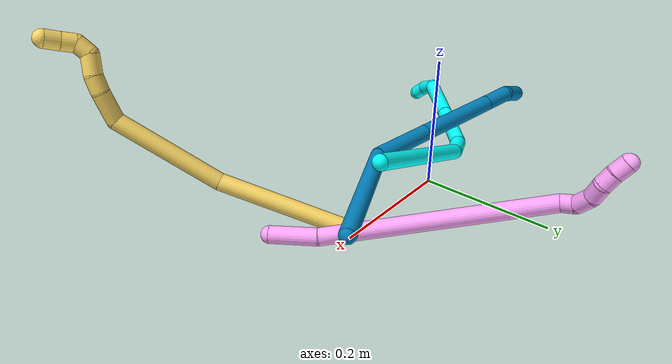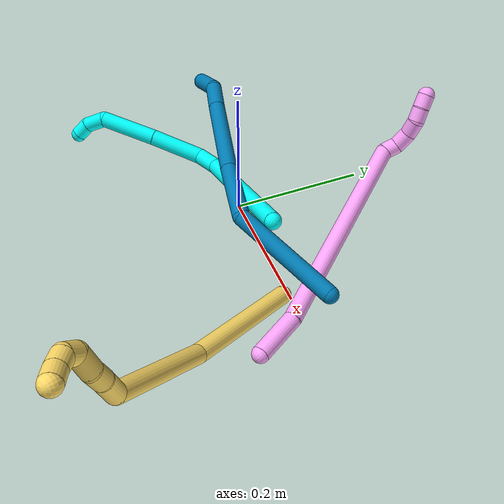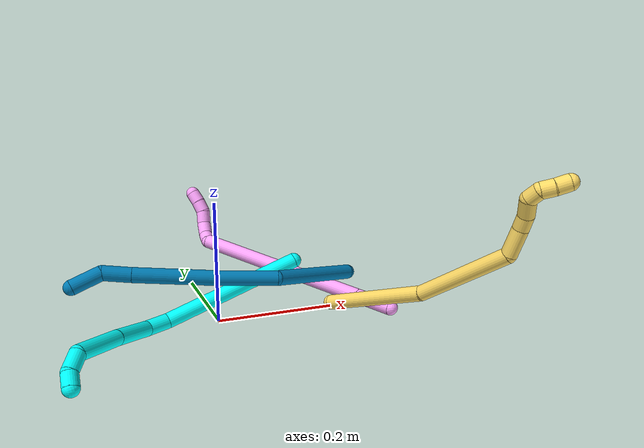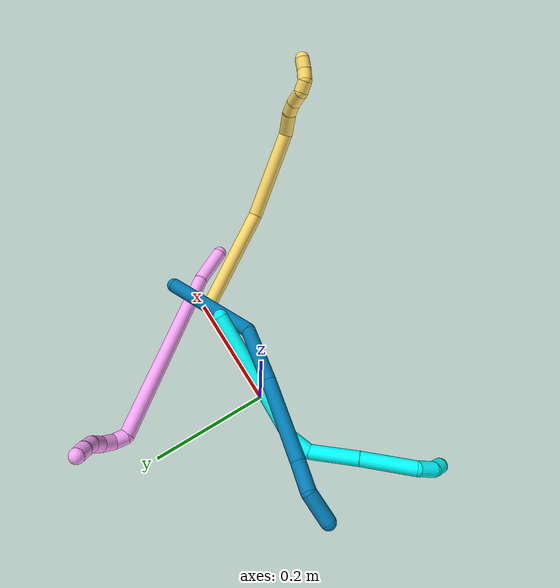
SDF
<sdf version="1.7">
 <world name="default">
  <model name="photoneo_s_sensor">
   <static>1</static>
   <pose>0 0 2 1.57079 1.57079 3.14159</pose>
   <link name="link">
    <inertial><mass>0.1</mass></inertial>
    <sensor name="sensor" type="depth">
     <update_rate>30</update_rate>
     <camera>
      <horizontal_fov>1.22</horizontal_fov>
      <image><width>1920</width><height>1200</height><format>B8G8R8</format></image>
      <clip><near>0.1</near><far>4</far></clip>
      <depth_camera><output>points</output></depth_camera>
     </camera>
     <plugin name="camera_plugin" filename="libgazebo_ros_depth_camera.so">
      <baseline>0.2</baseline>
      <alwaysOn>1</alwaysOn>
      <updateRate>0.0</updateRate>
      <cameraName>camera_ir</cameraName>
      <imageTopicName>/camera/color/image_raw</imageTopicName>
      <cameraInfoTopicName>/camera/color/camera_info</cameraInfoTopicName>
      <depthImageTopicName>/camera/depth/image_raw</depthImageTopicName>
      <depthImageCameraInfoTopicName>/camera/depth/camera_info</depthImageCameraInfoTopicName>
      <pointCloudTopicName>/camera/depth/points</pointCloudTopicName>
      <frameName>fr_optical</frameName>
      <pointCloudCutoff>0.1</pointCloudCutoff>
      <pointCloudCutoffMax>2.0</pointCloudCutoffMax>
      <distortionK1>0</distortionK1>
      <distortionK2>0</distortionK2>
      <distortionK3>0</distortionK3>
      <distortionT1>0</distortionT1>
      <distortionT2>0</distortionT2>
      <CxPrime>0</CxPrime>
      <Cx>0</Cx>
      <Cy>0</Cy>
      <focalLength>0</focalLength>
      <hackBaseline>0</hackBaseline>
     </plugin>
    </sensor>
   </link>
  </model>
  <model name="bin">
   <static>1</static>
   <link name="bottom">
    <collision name="collision-bottom">
     <pose>0 0 -0.01 0 -0 0</pose>
     <geometry><box><size>0.8 0.6 0.02</size></box></geometry>
     <surface>
      <friction><ode><mu>100</mu><mu2>100</mu2></ode></friction>
      <contact><collide_bitmask>65535</collide_bitmask></contact>
     </surface>
    </collision>
   </link>
   <link name="west_wall">
    <collision name="collision-west_wall">
     <pose>-0.41 0 0.1 0 -0 0</pose>
     <geometry><box><size>0.02 0.6 0.2</size></box></geometry>
     <surface>
      <friction><ode><mu>100</mu><mu2>100</mu2></ode></friction>
      <contact><collide_bitmask>65535</collide_bitmask></contact>
     </surface>
    </collision>
   </link>
   <link name="east_wall">
    <collision name="collision-east_wall">
     <pose>0.41 0 0.1 0 -0 0</pose>
     <geometry><box><size>0.02 0.6 0.2</size></box></geometry>
     <surface>
      <friction><ode><mu>100</mu><mu2>100</mu2></ode></friction>
      <contact><collide_bitmask>65535</collide_bitmask></contact>
     </surface>
    </collision>
   </link>
   <link name="south_wall">
    <collision name="collision-south_wall">
     <pose>0 -0.31 0.1 0 -0 0</pose>
     <geometry><box><size>0.8 0.02 0.2</size></box></geometry>
     <surface>
      <friction><ode><mu>100</mu><mu2>100</mu2></ode></friction>
      <contact><collide_bitmask>65535</collide_bitmask></contact>
     </surface>
    </collision>
   </link>
   <link name="north_wall">
    <collision name="collision-north_wall">
     <pose>0 0.31 0.1 0 -0 0</pose>
     <geometry><box><size>0.8 0.02 0.2</size></box></geometry>
     <surface>
      <friction><ode><mu>100</mu><mu2>100</mu2></ode></friction>
      <contact><collide_bitmask>65535</collide_bitmask></contact>
     </surface>
    </collision>
   </link>
  </model>
  <model name="3">
   <static>0</static>
   <link name="3">
    <collision name="collision-cylinder-e_1_1_4">
     <pose>-0.044591 0.014558 0.105591 -0.137004 -0.396214 0.027544</pose>
     <geometry><cylinder><radius>0.0125</radius><length>0.231082</length></cylinder></geometry>
     <surface>
      <friction><ode><mu>1.16</mu><mu2>1.16</mu2><slip1>0</slip1><slip2>0</slip2></ode></friction>
      <contact><ode><kp>1e+06</kp><kd>1</kd><max_vel>0</max_vel><min_depth>0.001</min_depth></ode></contact>
     </surface>
    </collision>
    <visual name="visual-cylinder-e_1_1_4">
     <pose>-0.044591 0.014558 0.105591 -0.137004 -0.396214 0.027544</pose>
     <geometry><cylinder><radius>0.0125</radius><length>0.231082</length></cylinder></geometry>
     <material><ambient>0.003922 1 0.996078 1</ambient></material>
    </visual>
    <collision name="collision-cylinder-e_2_4_5">
     <pose>-0.088612 0.029142 0.230666 -0.001383 0.029188 -2e-05</pose>
     <geometry><cylinder><radius>0.0125</radius><length>0.038985</length></cylinder></geometry>
     <surface>
      <friction><ode><mu>1.16</mu><mu2>1.16</mu2><slip1>0</slip1><slip2>0</slip2></ode></friction>
      <contact><ode><kp>1e+06</kp><kd>1</kd><max_vel>0</max_vel><min_depth>0.001</min_depth></ode></contact>
     </surface>
    </collision>
    <visual name="visual-cylinder-e_2_4_5">
     <pose>-0.088612 0.029142 0.230666 -0.001383 0.029188 -2e-05</pose>
     <geometry><cylinder><radius>0.0125</radius><length>0.038985</length></cylinder></geometry>
     <material><ambient>0.003922 1 0.996078 1</ambient></material>
    </visual>
    <collision name="collision-cylinder-e_3_5_6">
     <pose>-0.067881 0.019706 0.285033 0.264912 0.508844 0.069271</pose>
     <geometry><cylinder><radius>0.0125</radius><length>0.082772</length></cylinder></geometry>
     <surface>
      <friction><ode><mu>1.16</mu><mu2>1.16</mu2><slip1>0</slip1><slip2>0</slip2></ode></friction>
      <contact><ode><kp>1e+06</kp><kd>1</kd><max_vel>0</max_vel><min_depth>0.001</min_depth></ode></contact>
     </surface>
    </collision>
    <visual name="visual-cylinder-e_3_5_6">
     <pose>-0.067881 0.019706 0.285033 0.264912 0.508844 0.069271</pose>
     <geometry><cylinder><radius>0.0125</radius><length>0.082772</length></cylinder></geometry>
     <material><ambient>0.003922 1 0.996078 1</ambient></material>
    </visual>
    <collision name="collision-cylinder-e_4_6_7">
     <pose>-0.02818 -0.001098 0.359246 0.280726 0.445351 0.063964</pose>
     <geometry><cylinder><radius>0.0125</radius><length>0.090715</length></cylinder></geometry>
     <surface>
      <friction><ode><mu>1.16</mu><mu2>1.16</mu2><slip1>0</slip1><slip2>0</slip2></ode></friction>
      <contact><ode><kp>1e+06</kp><kd>1</kd><max_vel>0</max_vel><min_depth>0.001</min_depth></ode></contact>
     </surface>
    </collision>
    <visual name="visual-cylinder-e_4_6_7">
     <pose>-0.02818 -0.001098 0.359246 0.280726 0.445351 0.063964</pose>
     <geometry><cylinder><radius>0.0125</radius><length>0.090715</length></cylinder></geometry>
     <material><ambient>0.003922 1 0.996078 1</ambient></material>
    </visual>
    <collision name="collision-cylinder-e_5_7_8">
     <pose>-0.008545 -0.024029 0.410607 0.766798 0.005761 0.002324</pose>
     <geometry><cylinder><radius>0.0125</radius><length>0.033411</length></cylinder></geometry>
     <surface>
      <friction><ode><mu>1.16</mu><mu2>1.16</mu2><slip1>0</slip1><slip2>0</slip2></ode></friction>
      <contact><ode><kp>1e+06</kp><kd>1</kd><max_vel>0</max_vel><min_depth>0.001</min_depth></ode></contact>
     </surface>
    </collision>
    <visual name="visual-cylinder-e_5_7_8">
     <pose>-0.008545 -0.024029 0.410607 0.766798 0.005761 0.002324</pose>
     <geometry><cylinder><radius>0.0125</radius><length>0.033411</length></cylinder></geometry>
     <material><ambient>0.003922 1 0.996078 1</ambient></material>
    </visual>
    <collision name="collision-cylinder-e_6_8_2">
     <pose>-0.010393 -0.046218 0.426705 1.2043 -0.169561 -0.116686</pose>
     <geometry><cylinder><radius>0.0125</radius><length>0.023035</length></cylinder></geometry>
     <surface>
      <friction><ode><mu>1.16</mu><mu2>1.16</mu2><slip1>0</slip1><slip2>0</slip2></ode></friction>
      <contact><ode><kp>1e+06</kp><kd>1</kd><max_vel>0</max_vel><min_depth>0.001</min_depth></ode></contact>
     </surface>
    </collision>
    <visual name="visual-cylinder-e_6_8_2">
     <pose>-0.010393 -0.046218 0.426705 1.2043 -0.169561 -0.116686</pose>
     <geometry><cylinder><radius>0.0125</radius><length>0.023035</length></cylinder></geometry>
     <material><ambient>0.003922 1 0.996078 1</ambient></material>
    </visual>
    <collision name="collision-sphere-2">
     <pose>-0.012336 -0.056816 0.430773 0 -0 0</pose>
     <geometry><sphere><radius>0.0125</radius></sphere></geometry>
     <surface>
      <friction><ode><mu>1.16</mu><mu2>1.16</mu2><slip1>0</slip1><slip2>0</slip2></ode></friction>
      <contact><ode><kp>1e+06</kp><kd>1</kd><max_vel>0</max_vel><min_depth>0.001</min_depth></ode></contact>
     </surface>
    </collision>
    <visual name="visual-sphere-2">
     <pose>-0.012336 -0.056816 0.430773 0 -0 0</pose>
     <geometry><sphere><radius>0.0125</radius></sphere></geometry>
     <material><ambient>0.003922 1 0.996078 1</ambient></material>
    </visual>
    <collision name="collision-sphere-4">
     <pose>-0.089181 0.029115 0.211182 0 -0 0</pose>
     <geometry><sphere><radius>0.0125</radius></sphere></geometry>
     <surface>
      <friction><ode><mu>1.16</mu><mu2>1.16</mu2><slip1>0</slip1><slip2>0</slip2></ode></friction>
      <contact><ode><kp>1e+06</kp><kd>1</kd><max_vel>0</max_vel><min_depth>0.001</min_depth></ode></contact>
     </surface>
    </collision>
    <visual name="visual-sphere-4">
     <pose>-0.089181 0.029115 0.211182 0 -0 0</pose>
     <geometry><sphere><radius>0.0125</radius></sphere></geometry>
     <material><ambient>0.003922 1 0.996078 1</ambient></material>
    </visual>
    <collision name="collision-sphere-1">
     <geometry><sphere><radius>0.0125</radius></sphere></geometry>
     <surface>
      <friction><ode><mu>1.16</mu><mu2>1.16</mu2><slip1>0</slip1><slip2>0</slip2></ode></friction>
      <contact><ode><kp>1e+06</kp><kd>1</kd><max_vel>0</max_vel><min_depth>0.001</min_depth></ode></contact>
     </surface>
    </collision>
    <visual name="visual-sphere-1">
     <geometry><sphere><radius>0.0125</radius></sphere></geometry>
     <material><ambient>0.003922 1 0.996078 1</ambient></material>
    </visual>
    <collision name="collision-sphere-8">
     <pose>-0.008449 -0.03562 0.422637 0 -0 0</pose>
     <geometry><sphere><radius>0.0125</radius></sphere></geometry>
     <surface>
      <friction><ode><mu>1.16</mu><mu2>1.16</mu2><slip1>0</slip1><slip2>0</slip2></ode></friction>
      <contact><ode><kp>1e+06</kp><kd>1</kd><max_vel>0</max_vel><min_depth>0.001</min_depth></ode></contact>
     </surface>
    </collision>
    <visual name="visual-sphere-8">
     <pose>-0.008449 -0.03562 0.422637 0 -0 0</pose>
     <geometry><sphere><radius>0.0125</radius></sphere></geometry>
     <material><ambient>0.003922 1 0.996078 1</ambient></material>
    </visual>
    <collision name="collision-sphere-5">
     <pose>-0.088043 0.029169 0.250151 0 -0 0</pose>
     <geometry><sphere><radius>0.0125</radius></sphere></geometry>
     <surface>
      <friction><ode><mu>1.16</mu><mu2>1.16</mu2><slip1>0</slip1><slip2>0</slip2></ode></friction>
      <contact><ode><kp>1e+06</kp><kd>1</kd><max_vel>0</max_vel><min_depth>0.001</min_depth></ode></contact>
     </surface>
    </collision>
    <visual name="visual-sphere-5">
     <pose>-0.088043 0.029169 0.250151 0 -0 0</pose>
     <geometry><sphere><radius>0.0125</radius></sphere></geometry>
     <material><ambient>0.003922 1 0.996078 1</ambient></material>
    </visual>
    <collision name="collision-sphere-6">
     <pose>-0.047719 0.010243 0.319915 0 -0 0</pose>
     <geometry><sphere><radius>0.0125</radius></sphere></geometry>
     <surface>
      <friction><ode><mu>1.16</mu><mu2>1.16</mu2><slip1>0</slip1><slip2>0</slip2></ode></friction>
      <contact><ode><kp>1e+06</kp><kd>1</kd><max_vel>0</max_vel><min_depth>0.001</min_depth></ode></contact>
     </surface>
    </collision>
    <visual name="visual-sphere-6">
     <pose>-0.047719 0.010243 0.319915 0 -0 0</pose>
     <geometry><sphere><radius>0.0125</radius></sphere></geometry>
     <material><ambient>0.003922 1 0.996078 1</ambient></material>
    </visual>
    <collision name="collision-sphere-7">
     <pose>-0.008641 -0.012439 0.398577 0 -0 0</pose>
     <geometry><sphere><radius>0.0125</radius></sphere></geometry>
     <surface>
      <friction><ode><mu>1.16</mu><mu2>1.16</mu2><slip1>0</slip1><slip2>0</slip2></ode></friction>
      <contact><ode><kp>1e+06</kp><kd>1</kd><max_vel>0</max_vel><min_depth>0.001</min_depth></ode></contact>
     </surface>
    </collision>
    <visual name="visual-sphere-7">
     <pose>-0.008641 -0.012439 0.398577 0 -0 0</pose>
     <geometry><sphere><radius>0.0125</radius></sphere></geometry>
     <material><ambient>0.003922 1 0.996078 1</ambient></material>
    </visual>
    <inertial>
     <pose>-0.044917 0.008328 0.226245 0 -0 0</pose>
     <mass>0.5</mass>
     <inertia>
      <ixx>0.001105</ixx>
      <ixy>0</ixy>
      <ixz>0</ixz>
      <iyy>0.00118</iyy>
      <iyz>0</iyz>
      <izz>0.000283</izz>
     </inertia>
    </inertial>
   </link>
   <pose>0.13222 -0.001566 0.09119 1.72762 -0.982747 -1.33915</pose>
  </model>
  <model name="4">
   <static>0</static>
   <link name="4">
    <collision name="collision-cylinder-e_1_1_4">
     <pose>-0.006771 0.026937 0.01987 -0.935239 -0.199601 0.101044</pose>
     <geometry><cylinder><radius>0.0125</radius><length>0.068302</length></cylinder></geometry>
     <surface>
      <friction><ode><mu>1.16</mu><mu2>1.16</mu2><slip1>0</slip1><slip2>0</slip2></ode></friction>
      <contact><ode><kp>1e+06</kp><kd>1</kd><max_vel>0</max_vel><min_depth>0.001</min_depth></ode></contact>
     </surface>
    </collision>
    <visual name="visual-cylinder-e_1_1_4">
     <pose>-0.006771 0.026937 0.01987 -0.935239 -0.199601 0.101044</pose>
     <geometry><cylinder><radius>0.0125</radius><length>0.068302</length></cylinder></geometry>
     <material><ambient>1 0.65098 0.996078 1</ambient></material>
    </visual>
    <collision name="collision-cylinder-e_2_4_5">
     <pose>-0.07713 0.169695 0.130606 -0.905561 -0.407739 0.200481</pose>
     <geometry><cylinder><radius>0.0125</radius><length>0.320713</length></cylinder></geometry>
     <surface>
      <friction><ode><mu>1.16</mu><mu2>1.16</mu2><slip1>0</slip1><slip2>0</slip2></ode></friction>
      <contact><ode><kp>1e+06</kp><kd>1</kd><max_vel>0</max_vel><min_depth>0.001</min_depth></ode></contact>
     </surface>
    </collision>
    <visual name="visual-cylinder-e_2_4_5">
     <pose>-0.07713 0.169695 0.130606 -0.905561 -0.407739 0.200481</pose>
     <geometry><cylinder><radius>0.0125</radius><length>0.320713</length></cylinder></geometry>
     <material><ambient>1 0.65098 0.996078 1</ambient></material>
    </visual>
    <collision name="collision-cylinder-e_3_5_6">
     <pose>-0.13846 0.290705 0.230623 -0.515746 0.21133 -0.055931</pose>
     <geometry><cylinder><radius>0.0125</radius><length>0.021521</length></cylinder></geometry>
     <surface>
      <friction><ode><mu>1.16</mu><mu2>1.16</mu2><slip1>0</slip1><slip2>0</slip2></ode></friction>
      <contact><ode><kp>1e+06</kp><kd>1</kd><max_vel>0</max_vel><min_depth>0.001</min_depth></ode></contact>
     </surface>
    </collision>
    <visual name="visual-cylinder-e_3_5_6">
     <pose>-0.13846 0.290705 0.230623 -0.515746 0.21133 -0.055931</pose>
     <geometry><cylinder><radius>0.0125</radius><length>0.021521</length></cylinder></geometry>
     <material><ambient>1 0.65098 0.996078 1</ambient></material>
    </visual>
    <collision name="collision-cylinder-e_4_6_7">
     <pose>-0.136389 0.296351 0.252372 -0.036328 -0.014819 0.000269</pose>
     <geometry><cylinder><radius>0.0125</radius><length>0.025213</length></cylinder></geometry>
     <surface>
      <friction><ode><mu>1.16</mu><mu2>1.16</mu2><slip1>0</slip1><slip2>0</slip2></ode></friction>
      <contact><ode><kp>1e+06</kp><kd>1</kd><max_vel>0</max_vel><min_depth>0.001</min_depth></ode></contact>
     </surface>
    </collision>
    <visual name="visual-cylinder-e_4_6_7">
     <pose>-0.136389 0.296351 0.252372 -0.036328 -0.014819 0.000269</pose>
     <geometry><cylinder><radius>0.0125</radius><length>0.025213</length></cylinder></geometry>
     <material><ambient>1 0.65098 0.996078 1</ambient></material>
    </visual>
    <collision name="collision-cylinder-e_5_7_8">
     <pose>-0.138411 0.293536 0.276181 0.284028 -0.15582 -0.022323</pose>
     <geometry><cylinder><radius>0.0125</radius><length>0.023646</length></cylinder></geometry>
     <surface>
      <friction><ode><mu>1.16</mu><mu2>1.16</mu2><slip1>0</slip1><slip2>0</slip2></ode></friction>
      <contact><ode><kp>1e+06</kp><kd>1</kd><max_vel>0</max_vel><min_depth>0.001</min_depth></ode></contact>
     </surface>
    </collision>
    <visual name="visual-cylinder-e_5_7_8">
     <pose>-0.138411 0.293536 0.276181 0.284028 -0.15582 -0.022323</pose>
     <geometry><cylinder><radius>0.0125</radius><length>0.023646</length></cylinder></geometry>
     <material><ambient>1 0.65098 0.996078 1</ambient></material>
    </visual>
    <collision name="collision-cylinder-e_6_8_9">
     <pose>-0.144555 0.290224 0.296585 0.004293 -0.438412 -0.000956</pose>
     <geometry><cylinder><radius>0.0125</radius><length>0.020304</length></cylinder></geometry>
     <surface>
      <friction><ode><mu>1.16</mu><mu2>1.16</mu2><slip1>0</slip1><slip2>0</slip2></ode></friction>
      <contact><ode><kp>1e+06</kp><kd>1</kd><max_vel>0</max_vel><min_depth>0.001</min_depth></ode></contact>
     </surface>
    </collision>
    <visual name="visual-cylinder-e_6_8_9">
     <pose>-0.144555 0.290224 0.296585 0.004293 -0.438412 -0.000956</pose>
     <geometry><cylinder><radius>0.0125</radius><length>0.020304</length></cylinder></geometry>
     <material><ambient>1 0.65098 0.996078 1</ambient></material>
    </visual>
    <collision name="collision-cylinder-e_7_9_2">
     <pose>-0.153262 0.291539 0.314824 -0.148568 -0.448026 0.033908</pose>
     <geometry><cylinder><radius>0.0125</radius><length>0.020301</length></cylinder></geometry>
     <surface>
      <friction><ode><mu>1.16</mu><mu2>1.16</mu2><slip1>0</slip1><slip2>0</slip2></ode></friction>
      <contact><ode><kp>1e+06</kp><kd>1</kd><max_vel>0</max_vel><min_depth>0.001</min_depth></ode></contact>
     </surface>
    </collision>
    <visual name="visual-cylinder-e_7_9_2">
     <pose>-0.153262 0.291539 0.314824 -0.148568 -0.448026 0.033908</pose>
     <geometry><cylinder><radius>0.0125</radius><length>0.020301</length></cylinder></geometry>
     <material><ambient>1 0.65098 0.996078 1</ambient></material>
    </visual>
    <collision name="collision-sphere-2">
     <pose>-0.157659 0.292893 0.323872 0 -0 0</pose>
     <geometry><sphere><radius>0.0125</radius></sphere></geometry>
     <surface>
      <friction><ode><mu>1.16</mu><mu2>1.16</mu2><slip1>0</slip1><slip2>0</slip2></ode></friction>
      <contact><ode><kp>1e+06</kp><kd>1</kd><max_vel>0</max_vel><min_depth>0.001</min_depth></ode></contact>
     </surface>
    </collision>
    <visual name="visual-sphere-2">
     <pose>-0.157659 0.292893 0.323872 0 -0 0</pose>
     <geometry><sphere><radius>0.0125</radius></sphere></geometry>
     <material><ambient>1 0.65098 0.996078 1</ambient></material>
    </visual>
    <collision name="collision-sphere-9">
     <pose>-0.148865 0.290184 0.305776 0 -0 0</pose>
     <geometry><sphere><radius>0.0125</radius></sphere></geometry>
     <surface>
      <friction><ode><mu>1.16</mu><mu2>1.16</mu2><slip1>0</slip1><slip2>0</slip2></ode></friction>
      <contact><ode><kp>1e+06</kp><kd>1</kd><max_vel>0</max_vel><min_depth>0.001</min_depth></ode></contact>
     </surface>
    </collision>
    <visual name="visual-sphere-9">
     <pose>-0.148865 0.290184 0.305776 0 -0 0</pose>
     <geometry><sphere><radius>0.0125</radius></sphere></geometry>
     <material><ambient>1 0.65098 0.996078 1</ambient></material>
    </visual>
    <collision name="collision-sphere-4">
     <pose>-0.013543 0.053874 0.039741 0 -0 0</pose>
     <geometry><sphere><radius>0.0125</radius></sphere></geometry>
     <surface>
      <friction><ode><mu>1.16</mu><mu2>1.16</mu2><slip1>0</slip1><slip2>0</slip2></ode></friction>
      <contact><ode><kp>1e+06</kp><kd>1</kd><max_vel>0</max_vel><min_depth>0.001</min_depth></ode></contact>
     </surface>
    </collision>
    <visual name="visual-sphere-4">
     <pose>-0.013543 0.053874 0.039741 0 -0 0</pose>
     <geometry><sphere><radius>0.0125</radius></sphere></geometry>
     <material><ambient>1 0.65098 0.996078 1</ambient></material>
    </visual>
    <collision name="collision-sphere-1">
     <geometry><sphere><radius>0.0125</radius></sphere></geometry>
     <surface>
      <friction><ode><mu>1.16</mu><mu2>1.16</mu2><slip1>0</slip1><slip2>0</slip2></ode></friction>
      <contact><ode><kp>1e+06</kp><kd>1</kd><max_vel>0</max_vel><min_depth>0.001</min_depth></ode></contact>
     </surface>
    </collision>
    <visual name="visual-sphere-1">
     <geometry><sphere><radius>0.0125</radius></sphere></geometry>
     <material><ambient>1 0.65098 0.996078 1</ambient></material>
    </visual>
    <collision name="collision-sphere-8">
     <pose>-0.140246 0.290263 0.287393 0 -0 0</pose>
     <geometry><sphere><radius>0.0125</radius></sphere></geometry>
     <surface>
      <friction><ode><mu>1.16</mu><mu2>1.16</mu2><slip1>0</slip1><slip2>0</slip2></ode></friction>
      <contact><ode><kp>1e+06</kp><kd>1</kd><max_vel>0</max_vel><min_depth>0.001</min_depth></ode></contact>
     </surface>
    </collision>
    <visual name="visual-sphere-8">
     <pose>-0.140246 0.290263 0.287393 0 -0 0</pose>
     <geometry><sphere><radius>0.0125</radius></sphere></geometry>
     <material><ambient>1 0.65098 0.996078 1</ambient></material>
    </visual>
    <collision name="collision-sphere-5">
     <pose>-0.140717 0.285516 0.22147 0 -0 0</pose>
     <geometry><sphere><radius>0.0125</radius></sphere></geometry>
     <surface>
      <friction><ode><mu>1.16</mu><mu2>1.16</mu2><slip1>0</slip1><slip2>0</slip2></ode></friction>
      <contact><ode><kp>1e+06</kp><kd>1</kd><max_vel>0</max_vel><min_depth>0.001</min_depth></ode></contact>
     </surface>
    </collision>
    <visual name="visual-sphere-5">
     <pose>-0.140717 0.285516 0.22147 0 -0 0</pose>
     <geometry><sphere><radius>0.0125</radius></sphere></geometry>
     <material><ambient>1 0.65098 0.996078 1</ambient></material>
    </visual>
    <collision name="collision-sphere-6">
     <pose>-0.136203 0.295894 0.239775 0 -0 0</pose>
     <geometry><sphere><radius>0.0125</radius></sphere></geometry>
     <surface>
      <friction><ode><mu>1.16</mu><mu2>1.16</mu2><slip1>0</slip1><slip2>0</slip2></ode></friction>
      <contact><ode><kp>1e+06</kp><kd>1</kd><max_vel>0</max_vel><min_depth>0.001</min_depth></ode></contact>
     </surface>
    </collision>
    <visual name="visual-sphere-6">
     <pose>-0.136203 0.295894 0.239775 0 -0 0</pose>
     <geometry><sphere><radius>0.0125</radius></sphere></geometry>
     <material><ambient>1 0.65098 0.996078 1</ambient></material>
    </visual>
    <collision name="collision-sphere-7">
     <pose>-0.136576 0.296809 0.264969 0 -0 0</pose>
     <geometry><sphere><radius>0.0125</radius></sphere></geometry>
     <surface>
      <friction><ode><mu>1.16</mu><mu2>1.16</mu2><slip1>0</slip1><slip2>0</slip2></ode></friction>
      <contact><ode><kp>1e+06</kp><kd>1</kd><max_vel>0</max_vel><min_depth>0.001</min_depth></ode></contact>
     </surface>
    </collision>
    <visual name="visual-sphere-7">
     <pose>-0.136576 0.296809 0.264969 0 -0 0</pose>
     <geometry><sphere><radius>0.0125</radius></sphere></geometry>
     <material><ambient>1 0.65098 0.996078 1</ambient></material>
    </visual>
    <inertial>
     <pose>-0.081874 0.177487 0.147028 0 -0 0</pose>
     <mass>0.5</mass>
     <inertia>
      <ixx>0.003017</ixx>
      <ixy>0</ixy>
      <ixz>0</ixz>
      <iyy>0.002399</iyy>
      <iyz>0</iyz>
      <izz>-0.000891</izz>
     </inertia>
    </inertial>
   </link>
   <pose>0.278098 -0.078001 0.013519 -0.626518 0.351288 0.329186</pose>
  </model>
  <model name="5">
   <static>0</static>
   <link name="5">
    <collision name="collision-cylinder-e_1_1_4">
     <pose>-0.002977 -0.002258 0.092127 0.024506 -0.032292 -0.000396</pose>
     <geometry><cylinder><radius>0.0125</radius><length>0.184406</length></cylinder></geometry>
     <surface>
      <friction><ode><mu>1.16</mu><mu2>1.16</mu2><slip1>0</slip1><slip2>0</slip2></ode></friction>
      <contact><ode><kp>1e+06</kp><kd>1</kd><max_vel>0</max_vel><min_depth>0.001</min_depth></ode></contact>
     </surface>
    </collision>
    <visual name="visual-cylinder-e_1_1_4">
     <pose>-0.002977 -0.002258 0.092127 0.024506 -0.032292 -0.000396</pose>
     <geometry><cylinder><radius>0.0125</radius><length>0.184406</length></cylinder></geometry>
     <material><ambient>1 0.858824 0.4 1</ambient></material>
    </visual>
    <collision name="collision-cylinder-e_2_4_5">
     <pose>0.003772 -0.023629 0.261447 0.242717 0.121702 0.014861</pose>
     <geometry><cylinder><radius>0.0125</radius><length>0.160232</length></cylinder></geometry>
     <surface>
      <friction><ode><mu>1.16</mu><mu2>1.16</mu2><slip1>0</slip1><slip2>0</slip2></ode></friction>
      <contact><ode><kp>1e+06</kp><kd>1</kd><max_vel>0</max_vel><min_depth>0.001</min_depth></ode></contact>
     </surface>
    </collision>
    <visual name="visual-cylinder-e_2_4_5">
     <pose>0.003772 -0.023629 0.261447 0.242717 0.121702 0.014861</pose>
     <geometry><cylinder><radius>0.0125</radius><length>0.160232</length></cylinder></geometry>
     <material><ambient>1 0.858824 0.4 1</ambient></material>
    </visual>
    <collision name="collision-cylinder-e_3_5_6">
     <pose>0.025131 -0.055746 0.351389 0.795254 0.568403 0.24415</pose>
     <geometry><cylinder><radius>0.0125</radius><length>0.04322</length></cylinder></geometry>
     <surface>
      <friction><ode><mu>1.16</mu><mu2>1.16</mu2><slip1>0</slip1><slip2>0</slip2></ode></friction>
      <contact><ode><kp>1e+06</kp><kd>1</kd><max_vel>0</max_vel><min_depth>0.001</min_depth></ode></contact>
     </surface>
    </collision>
    <visual name="visual-cylinder-e_3_5_6">
     <pose>0.025131 -0.055746 0.351389 0.795254 0.568403 0.24415</pose>
     <geometry><cylinder><radius>0.0125</radius><length>0.04322</length></cylinder></geometry>
     <material><ambient>1 0.858824 0.4 1</ambient></material>
    </visual>
    <collision name="collision-cylinder-e_4_6_7">
     <pose>0.044206 -0.073827 0.371124 0.628606 0.711394 0.240368</pose>
     <geometry><cylinder><radius>0.0125</radius><length>0.0228</length></cylinder></geometry>
     <surface>
      <friction><ode><mu>1.16</mu><mu2>1.16</mu2><slip1>0</slip1><slip2>0</slip2></ode></friction>
      <contact><ode><kp>1e+06</kp><kd>1</kd><max_vel>0</max_vel><min_depth>0.001</min_depth></ode></contact>
     </surface>
    </collision>
    <visual name="visual-cylinder-e_4_6_7">
     <pose>0.044206 -0.073827 0.371124 0.628606 0.711394 0.240368</pose>
     <geometry><cylinder><radius>0.0125</radius><length>0.0228</length></cylinder></geometry>
     <material><ambient>1 0.858824 0.4 1</ambient></material>
    </visual>
    <collision name="collision-cylinder-e_5_7_8">
     <pose>0.063282 -0.083436 0.384739 0.599504 0.966555 0.321584</pose>
     <geometry><cylinder><radius>0.0125</radius><length>0.028273</length></cylinder></geometry>
     <surface>
      <friction><ode><mu>1.16</mu><mu2>1.16</mu2><slip1>0</slip1><slip2>0</slip2></ode></friction>
      <contact><ode><kp>1e+06</kp><kd>1</kd><max_vel>0</max_vel><min_depth>0.001</min_depth></ode></contact>
     </surface>
    </collision>
    <visual name="visual-cylinder-e_5_7_8">
     <pose>0.063282 -0.083436 0.384739 0.599504 0.966555 0.321584</pose>
     <geometry><cylinder><radius>0.0125</radius><length>0.028273</length></cylinder></geometry>
     <material><ambient>1 0.858824 0.4 1</ambient></material>
    </visual>
    <collision name="collision-cylinder-e_6_8_9">
     <pose>0.077462 -0.091288 0.400485 0.349341 0.256691 0.04554</pose>
     <geometry><cylinder><radius>0.0125</radius><length>0.020059</length></cylinder></geometry>
     <surface>
      <friction><ode><mu>1.16</mu><mu2>1.16</mu2><slip1>0</slip1><slip2>0</slip2></ode></friction>
      <contact><ode><kp>1e+06</kp><kd>1</kd><max_vel>0</max_vel><min_depth>0.001</min_depth></ode></contact>
     </surface>
    </collision>
    <visual name="visual-cylinder-e_6_8_9">
     <pose>0.077462 -0.091288 0.400485 0.349341 0.256691 0.04554</pose>
     <geometry><cylinder><radius>0.0125</radius><length>0.020059</length></cylinder></geometry>
     <material><ambient>1 0.858824 0.4 1</ambient></material>
    </visual>
    <collision name="collision-cylinder-e_7_9_10">
     <pose>0.076352 -0.098398 0.418144 0.417422 -0.372887 -0.079861</pose>
     <geometry><cylinder><radius>0.0125</radius><length>0.020073</length></cylinder></geometry>
     <surface>
      <friction><ode><mu>1.16</mu><mu2>1.16</mu2><slip1>0</slip1><slip2>0</slip2></ode></friction>
      <contact><ode><kp>1e+06</kp><kd>1</kd><max_vel>0</max_vel><min_depth>0.001</min_depth></ode></contact>
     </surface>
    </collision>
    <visual name="visual-cylinder-e_7_9_10">
     <pose>0.076352 -0.098398 0.418144 0.417422 -0.372887 -0.079861</pose>
     <geometry><cylinder><radius>0.0125</radius><length>0.020073</length></cylinder></geometry>
     <material><ambient>1 0.858824 0.4 1</ambient></material>
    </visual>
    <collision name="collision-cylinder-e_8_10_2">
     <pose>0.068839 -0.10737 0.434926 0.561525 -0.37728 -0.109998</pose>
     <geometry><cylinder><radius>0.0125</radius><length>0.020939</length></cylinder></geometry>
     <surface>
      <friction><ode><mu>1.16</mu><mu2>1.16</mu2><slip1>0</slip1><slip2>0</slip2></ode></friction>
      <contact><ode><kp>1e+06</kp><kd>1</kd><max_vel>0</max_vel><min_depth>0.001</min_depth></ode></contact>
     </surface>
    </collision>
    <visual name="visual-cylinder-e_8_10_2">
     <pose>0.068839 -0.10737 0.434926 0.561525 -0.37728 -0.109998</pose>
     <geometry><cylinder><radius>0.0125</radius><length>0.020939</length></cylinder></geometry>
     <material><ambient>1 0.858824 0.4 1</ambient></material>
    </visual>
    <collision name="collision-sphere-2">
     <pose>0.064982 -0.112552 0.443165 0 -0 0</pose>
     <geometry><sphere><radius>0.0125</radius></sphere></geometry>
     <surface>
      <friction><ode><mu>1.16</mu><mu2>1.16</mu2><slip1>0</slip1><slip2>0</slip2></ode></friction>
      <contact><ode><kp>1e+06</kp><kd>1</kd><max_vel>0</max_vel><min_depth>0.001</min_depth></ode></contact>
     </surface>
    </collision>
    <visual name="visual-sphere-2">
     <pose>0.064982 -0.112552 0.443165 0 -0 0</pose>
     <geometry><sphere><radius>0.0125</radius></sphere></geometry>
     <material><ambient>1 0.858824 0.4 1</ambient></material>
    </visual>
    <collision name="collision-sphere-10">
     <pose>0.072695 -0.102187 0.426688 0 -0 0</pose>
     <geometry><sphere><radius>0.0125</radius></sphere></geometry>
     <surface>
      <friction><ode><mu>1.16</mu><mu2>1.16</mu2><slip1>0</slip1><slip2>0</slip2></ode></friction>
      <contact><ode><kp>1e+06</kp><kd>1</kd><max_vel>0</max_vel><min_depth>0.001</min_depth></ode></contact>
     </surface>
    </collision>
    <visual name="visual-sphere-10">
     <pose>0.072695 -0.102187 0.426688 0 -0 0</pose>
     <geometry><sphere><radius>0.0125</radius></sphere></geometry>
     <material><ambient>1 0.858824 0.4 1</ambient></material>
    </visual>
    <collision name="collision-sphere-9">
     <pose>0.080008 -0.094609 0.4096 0 -0 0</pose>
     <geometry><sphere><radius>0.0125</radius></sphere></geometry>
     <surface>
      <friction><ode><mu>1.16</mu><mu2>1.16</mu2><slip1>0</slip1><slip2>0</slip2></ode></friction>
      <contact><ode><kp>1e+06</kp><kd>1</kd><max_vel>0</max_vel><min_depth>0.001</min_depth></ode></contact>
     </surface>
    </collision>
    <visual name="visual-sphere-9">
     <pose>0.080008 -0.094609 0.4096 0 -0 0</pose>
     <geometry><sphere><radius>0.0125</radius></sphere></geometry>
     <material><ambient>1 0.858824 0.4 1</ambient></material>
    </visual>
    <collision name="collision-sphere-4">
     <pose>-0.005954 -0.004516 0.184254 0 -0 0</pose>
     <geometry><sphere><radius>0.0125</radius></sphere></geometry>
     <surface>
      <friction><ode><mu>1.16</mu><mu2>1.16</mu2><slip1>0</slip1><slip2>0</slip2></ode></friction>
      <contact><ode><kp>1e+06</kp><kd>1</kd><max_vel>0</max_vel><min_depth>0.001</min_depth></ode></contact>
     </surface>
    </collision>
    <visual name="visual-sphere-4">
     <pose>-0.005954 -0.004516 0.184254 0 -0 0</pose>
     <geometry><sphere><radius>0.0125</radius></sphere></geometry>
     <material><ambient>1 0.858824 0.4 1</ambient></material>
    </visual>
    <collision name="collision-sphere-1">
     <geometry><sphere><radius>0.0125</radius></sphere></geometry>
     <surface>
      <friction><ode><mu>1.16</mu><mu2>1.16</mu2><slip1>0</slip1><slip2>0</slip2></ode></friction>
      <contact><ode><kp>1e+06</kp><kd>1</kd><max_vel>0</max_vel><min_depth>0.001</min_depth></ode></contact>
     </surface>
    </collision>
    <visual name="visual-sphere-1">
     <geometry><sphere><radius>0.0125</radius></sphere></geometry>
     <material><ambient>1 0.858824 0.4 1</ambient></material>
    </visual>
    <collision name="collision-sphere-8">
     <pose>0.074915 -0.087968 0.39137 0 -0 0</pose>
     <geometry><sphere><radius>0.0125</radius></sphere></geometry>
     <surface>
      <friction><ode><mu>1.16</mu><mu2>1.16</mu2><slip1>0</slip1><slip2>0</slip2></ode></friction>
      <contact><ode><kp>1e+06</kp><kd>1</kd><max_vel>0</max_vel><min_depth>0.001</min_depth></ode></contact>
     </surface>
    </collision>
    <visual name="visual-sphere-8">
     <pose>0.074915 -0.087968 0.39137 0 -0 0</pose>
     <geometry><sphere><radius>0.0125</radius></sphere></geometry>
     <material><ambient>1 0.858824 0.4 1</ambient></material>
    </visual>
    <collision name="collision-sphere-5">
     <pose>0.013499 -0.042742 0.338639 0 -0 0</pose>
     <geometry><sphere><radius>0.0125</radius></sphere></geometry>
     <surface>
      <friction><ode><mu>1.16</mu><mu2>1.16</mu2><slip1>0</slip1><slip2>0</slip2></ode></friction>
      <contact><ode><kp>1e+06</kp><kd>1</kd><max_vel>0</max_vel><min_depth>0.001</min_depth></ode></contact>
     </surface>
    </collision>
    <visual name="visual-sphere-5">
     <pose>0.013499 -0.042742 0.338639 0 -0 0</pose>
     <geometry><sphere><radius>0.0125</radius></sphere></geometry>
     <material><ambient>1 0.858824 0.4 1</ambient></material>
    </visual>
    <collision name="collision-sphere-6">
     <pose>0.036763 -0.06875 0.36414 0 -0 0</pose>
     <geometry><sphere><radius>0.0125</radius></sphere></geometry>
     <surface>
      <friction><ode><mu>1.16</mu><mu2>1.16</mu2><slip1>0</slip1><slip2>0</slip2></ode></friction>
      <contact><ode><kp>1e+06</kp><kd>1</kd><max_vel>0</max_vel><min_depth>0.001</min_depth></ode></contact>
     </surface>
    </collision>
    <visual name="visual-sphere-6">
     <pose>0.036763 -0.06875 0.36414 0 -0 0</pose>
     <geometry><sphere><radius>0.0125</radius></sphere></geometry>
     <material><ambient>1 0.858824 0.4 1</ambient></material>
    </visual>
    <collision name="collision-sphere-7">
     <pose>0.051649 -0.078905 0.378108 0 -0 0</pose>
     <geometry><sphere><radius>0.0125</radius></sphere></geometry>
     <surface>
      <friction><ode><mu>1.16</mu><mu2>1.16</mu2><slip1>0</slip1><slip2>0</slip2></ode></friction>
      <contact><ode><kp>1e+06</kp><kd>1</kd><max_vel>0</max_vel><min_depth>0.001</min_depth></ode></contact>
     </surface>
    </collision>
    <visual name="visual-sphere-7">
     <pose>0.051649 -0.078905 0.378108 0 -0 0</pose>
     <geometry><sphere><radius>0.0125</radius></sphere></geometry>
     <material><ambient>1 0.858824 0.4 1</ambient></material>
    </visual>
    <inertial>
     <pose>0.016933 -0.033417 0.237881 0 -0 0</pose>
     <mass>0.5</mass>
     <inertia>
      <ixx>0.000902</ixx>
      <ixy>0</ixy>
      <ixz>0</ixz>
      <iyy>0.000882</iyy>
      <iyz>0</iyz>
      <izz>0.000107</izz>
     </inertia>
    </inertial>
   </link>
   <pose>0.196708 -0.012615 0.011498 -1.1296 -0.747206 -2.95879</pose>
  </model>
  <model name="9">
   <static>0</static>
   <link name="9">
    <collision name="collision-cylinder-e_1_1_4">
     <pose>-0.007315 0.001535 -0.083972 -3.12332 -0.086873 2.72712</pose>
     <geometry><cylinder><radius>0.0125</radius><length>0.168607</length></cylinder></geometry>
     <surface>
      <friction><ode><mu>1.16</mu><mu2>1.16</mu2><slip1>0</slip1><slip2>0</slip2></ode></friction>
      <contact><ode><kp>1e+06</kp><kd>1</kd><max_vel>0</max_vel><min_depth>0.001</min_depth></ode></contact>
     </surface>
    </collision>
    <visual name="visual-cylinder-e_1_1_4">
     <pose>-0.007315 0.001535 -0.083972 -3.12332 -0.086873 2.72712</pose>
     <geometry><cylinder><radius>0.0125</radius><length>0.168607</length></cylinder></geometry>
     <material><ambient>0 0.490196 0.709804 1</ambient></material>
    </visual>
    <collision name="collision-cylinder-e_2_4_5">
     <pose>-0.041068 0.017742 -0.205608 -2.77013 -0.579241 2.01646</pose>
     <geometry><cylinder><radius>0.0125</radius><length>0.096602</length></cylinder></geometry>
     <surface>
      <friction><ode><mu>1.16</mu><mu2>1.16</mu2><slip1>0</slip1><slip2>0</slip2></ode></friction>
      <contact><ode><kp>1e+06</kp><kd>1</kd><max_vel>0</max_vel><min_depth>0.001</min_depth></ode></contact>
     </surface>
    </collision>
    <visual name="visual-cylinder-e_2_4_5">
     <pose>-0.041068 0.017742 -0.205608 -2.77013 -0.579241 2.01646</pose>
     <geometry><cylinder><radius>0.0125</radius><length>0.096602</length></cylinder></geometry>
     <material><ambient>0 0.490196 0.709804 1</ambient></material>
    </visual>
    <collision name="collision-cylinder-e_3_5_6">
     <pose>-0.107429 0.052185 -0.295087 -2.77708 -0.623929 2.10321</pose>
     <geometry><cylinder><radius>0.0125</radius><length>0.136664</length></cylinder></geometry>
     <surface>
      <friction><ode><mu>1.16</mu><mu2>1.16</mu2><slip1>0</slip1><slip2>0</slip2></ode></friction>
      <contact><ode><kp>1e+06</kp><kd>1</kd><max_vel>0</max_vel><min_depth>0.001</min_depth></ode></contact>
     </surface>
    </collision>
    <visual name="visual-cylinder-e_3_5_6">
     <pose>-0.107429 0.052185 -0.295087 -2.77708 -0.623929 2.10321</pose>
     <geometry><cylinder><radius>0.0125</radius><length>0.136664</length></cylinder></geometry>
     <material><ambient>0 0.490196 0.709804 1</ambient></material>
    </visual>
    <collision name="collision-cylinder-e_4_6_7">
     <pose>-0.161556 0.078264 -0.364281 -2.79338 -0.655092 2.18627</pose>
     <geometry><cylinder><radius>0.0125</radius><length>0.046634</length></cylinder></geometry>
     <surface>
      <friction><ode><mu>1.16</mu><mu2>1.16</mu2><slip1>0</slip1><slip2>0</slip2></ode></friction>
      <contact><ode><kp>1e+06</kp><kd>1</kd><max_vel>0</max_vel><min_depth>0.001</min_depth></ode></contact>
     </surface>
    </collision>
    <visual name="visual-cylinder-e_4_6_7">
     <pose>-0.161556 0.078264 -0.364281 -2.79338 -0.655092 2.18627</pose>
     <geometry><cylinder><radius>0.0125</radius><length>0.046634</length></cylinder></geometry>
     <material><ambient>0 0.490196 0.709804 1</ambient></material>
    </visual>
    <collision name="collision-cylinder-e_5_7_2">
     <pose>-0.179621 0.099141 -0.402537 -2.53233 -0.150483 0.47063</pose>
     <geometry><cylinder><radius>0.0125</radius><length>0.051493</length></cylinder></geometry>
     <surface>
      <friction><ode><mu>1.16</mu><mu2>1.16</mu2><slip1>0</slip1><slip2>0</slip2></ode></friction>
      <contact><ode><kp>1e+06</kp><kd>1</kd><max_vel>0</max_vel><min_depth>0.001</min_depth></ode></contact>
     </surface>
    </collision>
    <visual name="visual-cylinder-e_5_7_2">
     <pose>-0.179621 0.099141 -0.402537 -2.53233 -0.150483 0.47063</pose>
     <geometry><cylinder><radius>0.0125</radius><length>0.051493</length></cylinder></geometry>
     <material><ambient>0 0.490196 0.709804 1</ambient></material>
    </visual>
    <collision name="collision-sphere-2">
     <pose>-0.183481 0.113708 -0.423413 0 -0 0</pose>
     <geometry><sphere><radius>0.0125</radius></sphere></geometry>
     <surface>
      <friction><ode><mu>1.16</mu><mu2>1.16</mu2><slip1>0</slip1><slip2>0</slip2></ode></friction>
      <contact><ode><kp>1e+06</kp><kd>1</kd><max_vel>0</max_vel><min_depth>0.001</min_depth></ode></contact>
     </surface>
    </collision>
    <visual name="visual-sphere-2">
     <pose>-0.183481 0.113708 -0.423413 0 -0 0</pose>
     <geometry><sphere><radius>0.0125</radius></sphere></geometry>
     <material><ambient>0 0.490196 0.709804 1</ambient></material>
    </visual>
    <collision name="collision-sphere-7">
     <pose>-0.175762 0.084573 -0.381662 0 -0 0</pose>
     <geometry><sphere><radius>0.0125</radius></sphere></geometry>
     <surface>
      <friction><ode><mu>1.16</mu><mu2>1.16</mu2><slip1>0</slip1><slip2>0</slip2></ode></friction>
      <contact><ode><kp>1e+06</kp><kd>1</kd><max_vel>0</max_vel><min_depth>0.001</min_depth></ode></contact>
     </surface>
    </collision>
    <visual name="visual-sphere-7">
     <pose>-0.175762 0.084573 -0.381662 0 -0 0</pose>
     <geometry><sphere><radius>0.0125</radius></sphere></geometry>
     <material><ambient>0 0.490196 0.709804 1</ambient></material>
    </visual>
    <collision name="collision-sphere-6">
     <pose>-0.147351 0.071955 -0.346901 0 -0 0</pose>
     <geometry><sphere><radius>0.0125</radius></sphere></geometry>
     <surface>
      <friction><ode><mu>1.16</mu><mu2>1.16</mu2><slip1>0</slip1><slip2>0</slip2></ode></friction>
      <contact><ode><kp>1e+06</kp><kd>1</kd><max_vel>0</max_vel><min_depth>0.001</min_depth></ode></contact>
     </surface>
    </collision>
    <visual name="visual-sphere-6">
     <pose>-0.147351 0.071955 -0.346901 0 -0 0</pose>
     <geometry><sphere><radius>0.0125</radius></sphere></geometry>
     <material><ambient>0 0.490196 0.709804 1</ambient></material>
    </visual>
    <collision name="collision-sphere-5">
     <pose>-0.067508 0.032414 -0.243273 0 -0 0</pose>
     <geometry><sphere><radius>0.0125</radius></sphere></geometry>
     <surface>
      <friction><ode><mu>1.16</mu><mu2>1.16</mu2><slip1>0</slip1><slip2>0</slip2></ode></friction>
      <contact><ode><kp>1e+06</kp><kd>1</kd><max_vel>0</max_vel><min_depth>0.001</min_depth></ode></contact>
     </surface>
    </collision>
    <visual name="visual-sphere-5">
     <pose>-0.067508 0.032414 -0.243273 0 -0 0</pose>
     <geometry><sphere><radius>0.0125</radius></sphere></geometry>
     <material><ambient>0 0.490196 0.709804 1</ambient></material>
    </visual>
    <collision name="collision-sphere-1">
     <geometry><sphere><radius>0.0125</radius></sphere></geometry>
     <surface>
      <friction><ode><mu>1.16</mu><mu2>1.16</mu2><slip1>0</slip1><slip2>0</slip2></ode></friction>
      <contact><ode><kp>1e+06</kp><kd>1</kd><max_vel>0</max_vel><min_depth>0.001</min_depth></ode></contact>
     </surface>
    </collision>
    <visual name="visual-sphere-1">
     <geometry><sphere><radius>0.0125</radius></sphere></geometry>
     <material><ambient>0 0.490196 0.709804 1</ambient></material>
    </visual>
    <collision name="collision-sphere-4">
     <pose>-0.014629 0.00307 -0.167943 0 -0 0</pose>
     <geometry><sphere><radius>0.0125</radius></sphere></geometry>
     <surface>
      <friction><ode><mu>1.16</mu><mu2>1.16</mu2><slip1>0</slip1><slip2>0</slip2></ode></friction>
      <contact><ode><kp>1e+06</kp><kd>1</kd><max_vel>0</max_vel><min_depth>0.001</min_depth></ode></contact>
     </surface>
    </collision>
    <visual name="visual-sphere-4">
     <pose>-0.014629 0.00307 -0.167943 0 -0 0</pose>
     <geometry><sphere><radius>0.0125</radius></sphere></geometry>
     <material><ambient>0 0.490196 0.709804 1</ambient></material>
    </visual>
    <inertial>
     <pose>-0.073331 0.035719 -0.224128 0 -0 0</pose>
     <mass>0.5</mass>
     <inertia>
      <ixx>-0.000108</ixx>
      <ixy>0</ixy>
      <ixz>0</ixz>
      <iyy>0.000955</iyy>
      <iyz>0</iyz>
      <izz>7.6e-05</izz>
     </inertia>
    </inertial>
   </link>
   <pose>0.246335 0.032791 0.047087 -1.72888 0.417802 -1.14593</pose>
  </model>
 </world>
</sdf>
